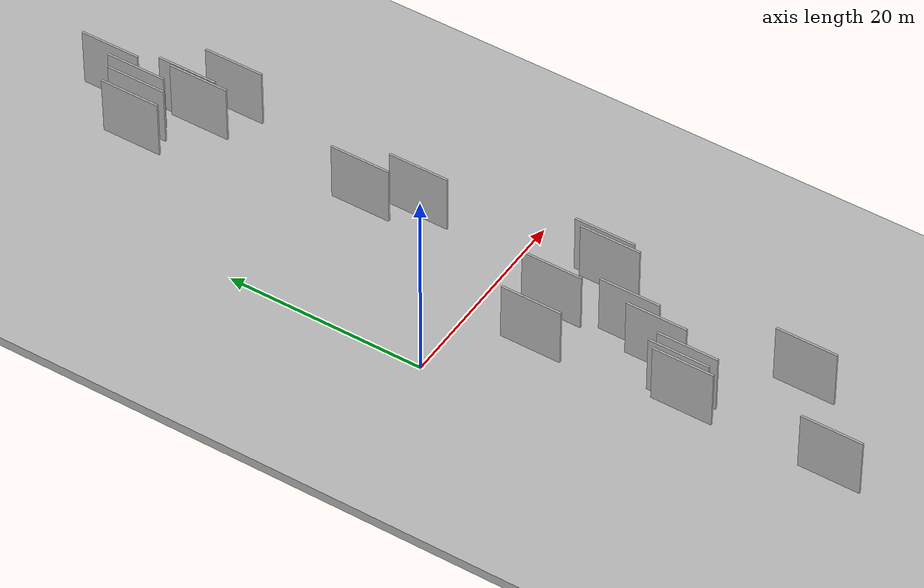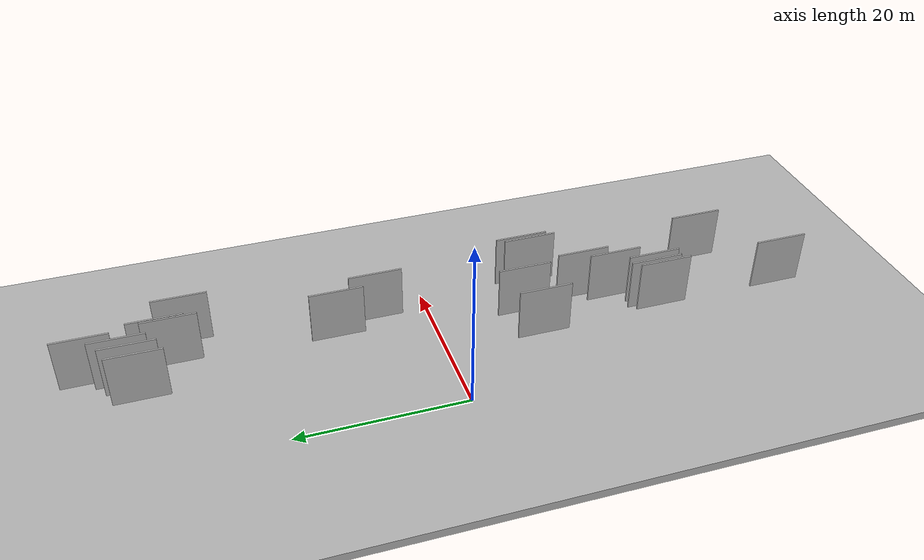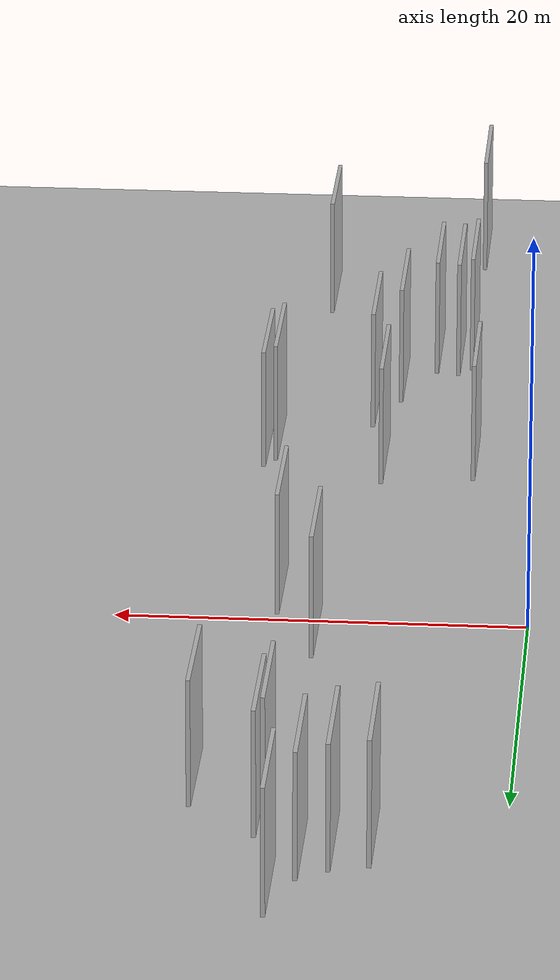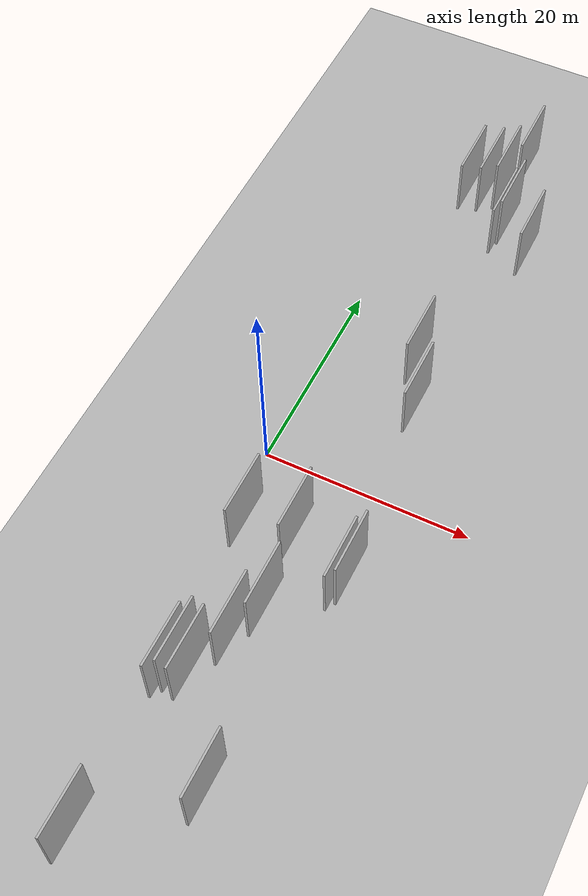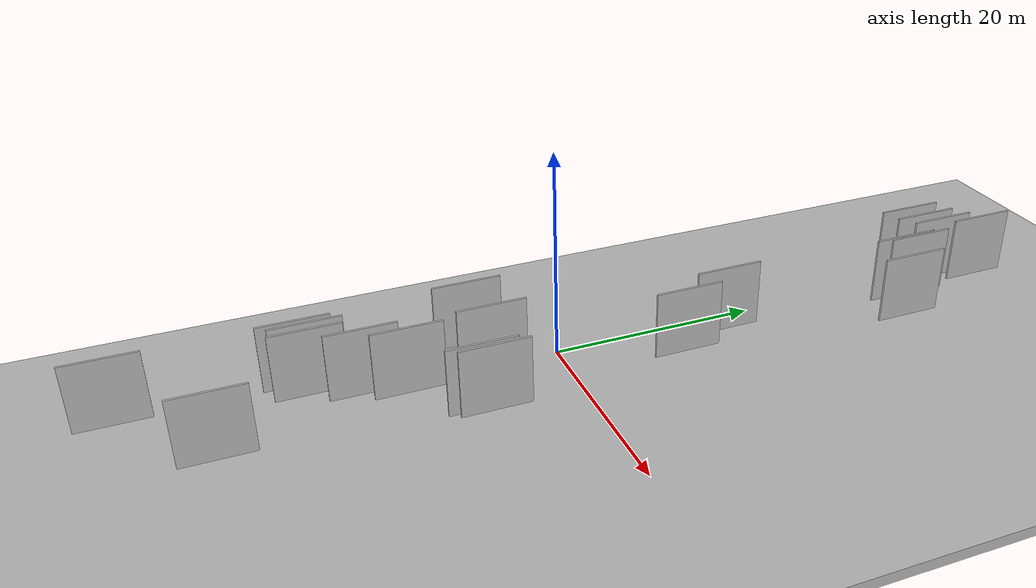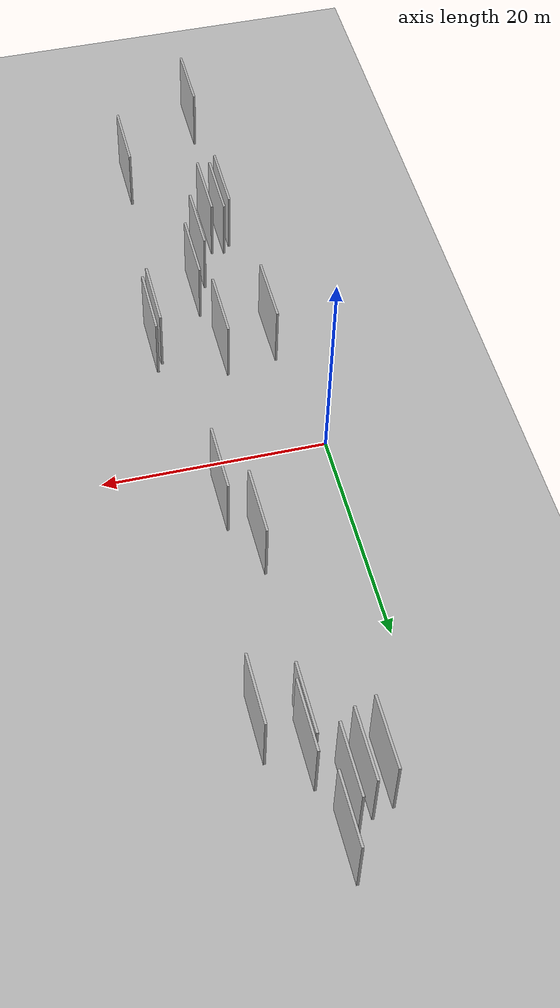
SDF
<?xml version="1.0" encoding="utf-8"?>

<sdf version="1.6">

   <world name="default">

      <gui fullscreen="0">

         <camera name="user_camera">

            <pose>-15 0 4.57585 0 0 0</pose>

            <view_controller>orbit</view_controller>

         </camera>

      </gui>

      <scene>

         <sky>

           <clouds>

             <speed>12</speed>

           </clouds>

         </sky>

         <ambient>0.4 0.4 0.4 1</ambient>

         <background>0.7 0.7 0.7 1</background>

         <shadows>1</shadows>

      </scene>

      <gravity>0 0 -9.8066</gravity>

      <magnetic_field>6e-06 2.3e-05 -4.2e-05</magnetic_field>

      <physics default="0" name="default_physics" type="ode">

         <ode>

            <solver>

               <type>quick</type>

               <iters>10</iters>

               <sor>1.0</sor>

               <use_dynamic_moi_rescaling>0</use_dynamic_moi_rescaling>

            </solver>

            <constraints>

               <cfm>0</cfm>

               <erp>0.2</erp>

               <contact_max_correcting_vel>100</contact_max_correcting_vel>

               <contact_surface_layer>0.001</contact_surface_layer>

            </constraints>

         </ode>

         <max_step_size>0.004</max_step_size>

         <real_time_factor>1</real_time_factor>

         <real_time_update_rate>250</real_time_update_rate>

      </physics>

      <light name="sun" type="directional">

         <cast_shadows>1</cast_shadows>

         <pose>0 0 10 0 0 0</pose>

         <diffuse>0.8 0.8 0.8 1</diffuse>

         <specular>0.2 0.2 0.2 1</specular>

         <attenuation>

            <range>1000</range>

            <constant>0.9</constant>

            <linear>0.01</linear>

            <quadratic>0.001</quadratic>

         </attenuation>

         <direction>-0.5 0.1 -0.9</direction>

      </light>

      <include>

         <name>ground_plane_1</name>

         <uri>model://HANNAS_ground_plane</uri>

         <pose>0 0 0  0 0 0</pose>

      </include>

      <include>

         <name>ground_plane_2</name>

         <uri>model://HANNAS_ground_plane</uri>

         <pose>100 0 0  0 0 0</pose>

      </include>

      <model name="HANNAS_wall_1">

         <static>1</static>

         <pose frame="">13.3435 -10.2346 5.0 0.000000 0.000000 1.570796</pose>

         <link name="link">

            <pose frame="">0 0 3.00 0 0 0</pose>

            <collision name="collision">

               <geometry>

                  <box>

                     <size>6.00 0.2 6.00</size>

                  </box>

               </geometry>

               <max_contacts>10</max_contacts>

               <surface>

                  <contact>

                     <ode/>

                  </contact>

                  <bounce/>

                  <friction>

                     <torsional>

                        <ode/>

                     </torsional>

                     <ode/>

                  </friction>

               </surface>

            </collision>

            <visual name="visual">

               <cast_shadows>0</cast_shadows>

               <geometry>

                  <box>

                     <size>6.00 0.2 6.00</size>

                  </box>

               </geometry>

               <material>

                  <script>

                     <uri>model://HANNAS_wall/materials/scripts</uri>

                     <uri>model://HANNAS_wall/materials/textures</uri>

                     <name>vrc/HANNAS_wall</name>

                  </script>

               </material>

            </visual>

            <self_collide>0</self_collide>

            <enable_wind>0</enable_wind>

            <kinematic>0</kinematic>

         </link>

      </model>

      <model name="HANNAS_wall_2">

         <static>1</static>

         <pose frame="">8.3272 -15.8261 5.0 0.000000 0.000000 1.570796</pose>

         <link name="link">

            <pose frame="">0 0 3.00 0 0 0</pose>

            <collision name="collision">

               <geometry>

                  <box>

                     <size>6.00 0.2 6.00</size>

                  </box>

               </geometry>

               <max_contacts>10</max_contacts>

               <surface>

                  <contact>

                     <ode/>

                  </contact>

                  <bounce/>

                  <friction>

                     <torsional>

                        <ode/>

                     </torsional>

                     <ode/>

                  </friction>

               </surface>

            </collision>

            <visual name="visual">

               <cast_shadows>0</cast_shadows>

               <geometry>

                  <box>

                     <size>6.00 0.2 6.00</size>

                  </box>

               </geometry>

               <material>

                  <script>

                     <uri>model://HANNAS_wall/materials/scripts</uri>

                     <uri>model://HANNAS_wall/materials/textures</uri>

                     <name>vrc/HANNAS_wall</name>

                  </script>

               </material>

            </visual>

            <self_collide>0</self_collide>

            <enable_wind>0</enable_wind>

            <kinematic>0</kinematic>

         </link>

      </model>

      <model name="HANNAS_wall_3">

         <static>1</static>

         <pose frame="">7.1234 -19.2149 5.0 0.000000 0.000000 1.570796</pose>

         <link name="link">

            <pose frame="">0 0 3.00 0 0 0</pose>

            <collision name="collision">

               <geometry>

                  <box>

                     <size>6.00 0.2 6.00</size>

                  </box>

               </geometry>

               <max_contacts>10</max_contacts>

               <surface>

                  <contact>

                     <ode/>

                  </contact>

                  <bounce/>

                  <friction>

                     <torsional>

                        <ode/>

                     </torsional>

                     <ode/>

                  </friction>

               </surface>

            </collision>

            <visual name="visual">

               <cast_shadows>0</cast_shadows>

               <geometry>

                  <box>

                     <size>6.00 0.2 6.00</size>

                  </box>

               </geometry>

               <material>

                  <script>

                     <uri>model://HANNAS_wall/materials/scripts</uri>

                     <uri>model://HANNAS_wall/materials/textures</uri>

                     <name>vrc/HANNAS_wall</name>

                  </script>

               </material>

            </visual>

            <self_collide>0</self_collide>

            <enable_wind>0</enable_wind>

            <kinematic>0</kinematic>

         </link>

      </model>

      <model name="HANNAS_wall_4">

         <static>1</static>

         <pose frame="">9.4887 39.0282 5.0 0.000000 0.000000 1.570796</pose>

         <link name="link">

            <pose frame="">0 0 3.00 0 0 0</pose>

            <collision name="collision">

               <geometry>

                  <box>

                     <size>6.00 0.2 6.00</size>

                  </box>

               </geometry>

               <max_contacts>10</max_contacts>

               <surface>

                  <contact>

                     <ode/>

                  </contact>

                  <bounce/>

                  <friction>

                     <torsional>

                        <ode/>

                     </torsional>

                     <ode/>

                  </friction>

               </surface>

            </collision>

            <visual name="visual">

               <cast_shadows>0</cast_shadows>

               <geometry>

                  <box>

                     <size>6.00 0.2 6.00</size>

                  </box>

               </geometry>

               <material>

                  <script>

                     <uri>model://HANNAS_wall/materials/scripts</uri>

                     <uri>model://HANNAS_wall/materials/textures</uri>

                     <name>vrc/HANNAS_wall</name>

                  </script>

               </material>

            </visual>

            <self_collide>0</self_collide>

            <enable_wind>0</enable_wind>

            <kinematic>0</kinematic>

         </link>

      </model>

      <model name="HANNAS_wall_5">

         <static>1</static>

         <pose frame="">8.3911 35.4587 5.0 0.000000 0.000000 1.570796</pose>

         <link name="link">

            <pose frame="">0 0 3.00 0 0 0</pose>

            <collision name="collision">

               <geometry>

                  <box>

                     <size>6.00 0.2 6.00</size>

                  </box>

               </geometry>

               <max_contacts>10</max_contacts>

               <surface>

                  <contact>

                     <ode/>

                  </contact>

                  <bounce/>

                  <friction>

                     <torsional>

                        <ode/>

                     </torsional>

                     <ode/>

                  </friction>

               </surface>

            </collision>

            <visual name="visual">

               <cast_shadows>0</cast_shadows>

               <geometry>

                  <box>

                     <size>6.00 0.2 6.00</size>

                  </box>

               </geometry>

               <material>

                  <script>

                     <uri>model://HANNAS_wall/materials/scripts</uri>

                     <uri>model://HANNAS_wall/materials/textures</uri>

                     <name>vrc/HANNAS_wall</name>

                  </script>

               </material>

            </visual>

            <self_collide>0</self_collide>

            <enable_wind>0</enable_wind>

            <kinematic>0</kinematic>

         </link>

      </model>

      <model name="HANNAS_wall_6">

         <static>1</static>

         <pose frame="">5.3380 34.0003 5.0 0.000000 0.000000 1.570796</pose>

         <link name="link">

            <pose frame="">0 0 3.00 0 0 0</pose>

            <collision name="collision">

               <geometry>

                  <box>

                     <size>6.00 0.2 6.00</size>

                  </box>

               </geometry>

               <max_contacts>10</max_contacts>

               <surface>

                  <contact>

                     <ode/>

                  </contact>

                  <bounce/>

                  <friction>

                     <torsional>

                        <ode/>

                     </torsional>

                     <ode/>

                  </friction>

               </surface>

            </collision>

            <visual name="visual">

               <cast_shadows>0</cast_shadows>

               <geometry>

                  <box>

                     <size>6.00 0.2 6.00</size>

                  </box>

               </geometry>

               <material>

                  <script>

                     <uri>model://HANNAS_wall/materials/scripts</uri>

                     <uri>model://HANNAS_wall/materials/textures</uri>

                     <name>vrc/HANNAS_wall</name>

                  </script>

               </material>

            </visual>

            <self_collide>0</self_collide>

            <enable_wind>0</enable_wind>

            <kinematic>0</kinematic>

         </link>

      </model>

      <model name="HANNAS_wall_7">

         <static>1</static>

         <pose frame="">13.5607 28.5280 5.0 0.000000 0.000000 1.570796</pose>

         <link name="link">

            <pose frame="">0 0 3.00 0 0 0</pose>

            <collision name="collision">

               <geometry>

                  <box>

                     <size>6.00 0.2 6.00</size>

                  </box>

               </geometry>

               <max_contacts>10</max_contacts>

               <surface>

                  <contact>

                     <ode/>

                  </contact>

                  <bounce/>

                  <friction>

                     <torsional>

                        <ode/>

                     </torsional>

                     <ode/>

                  </friction>

               </surface>

            </collision>

            <visual name="visual">

               <cast_shadows>0</cast_shadows>

               <geometry>

                  <box>

                     <size>6.00 0.2 6.00</size>

                  </box>

               </geometry>

               <material>

                  <script>

                     <uri>model://HANNAS_wall/materials/scripts</uri>

                     <uri>model://HANNAS_wall/materials/textures</uri>

                     <name>vrc/HANNAS_wall</name>

                  </script>

               </material>

            </visual>

            <self_collide>0</self_collide>

            <enable_wind>0</enable_wind>

            <kinematic>0</kinematic>

         </link>

      </model>

      <model name="HANNAS_wall_8">

         <static>1</static>

         <pose frame="">11.4334 -31.4107 5.0 0.000000 0.000000 1.570796</pose>

         <link name="link">

            <pose frame="">0 0 3.00 0 0 0</pose>

            <collision name="collision">

               <geometry>

                  <box>

                     <size>6.00 0.2 6.00</size>

                  </box>

               </geometry>

               <max_contacts>10</max_contacts>

               <surface>

                  <contact>

                     <ode/>

                  </contact>

                  <bounce/>

                  <friction>

                     <torsional>

                        <ode/>

                     </torsional>

                     <ode/>

                  </friction>

               </surface>

            </collision>

            <visual name="visual">

               <cast_shadows>0</cast_shadows>

               <geometry>

                  <box>

                     <size>6.00 0.2 6.00</size>

                  </box>

               </geometry>

               <material>

                  <script>

                     <uri>model://HANNAS_wall/materials/scripts</uri>

                     <uri>model://HANNAS_wall/materials/textures</uri>

                     <name>vrc/HANNAS_wall</name>

                  </script>

               </material>

            </visual>

            <self_collide>0</self_collide>

            <enable_wind>0</enable_wind>

            <kinematic>0</kinematic>

         </link>

      </model>

      <model name="HANNAS_wall_9">

         <static>1</static>

         <pose frame="">9.3766 12.3672 5.0 0.000000 0.000000 1.570796</pose>

         <link name="link">

            <pose frame="">0 0 3.00 0 0 0</pose>

            <collision name="collision">

               <geometry>

                  <box>

                     <size>6.00 0.2 6.00</size>

                  </box>

               </geometry>

               <max_contacts>10</max_contacts>

               <surface>

                  <contact>

                     <ode/>

                  </contact>

                  <bounce/>

                  <friction>

                     <torsional>

                        <ode/>

                     </torsional>

                     <ode/>

                  </friction>

               </surface>

            </collision>

            <visual name="visual">

               <cast_shadows>0</cast_shadows>

               <geometry>

                  <box>

                     <size>6.00 0.2 6.00</size>

                  </box>

               </geometry>

               <material>

                  <script>

                     <uri>model://HANNAS_wall/materials/scripts</uri>

                     <uri>model://HANNAS_wall/materials/textures</uri>

                     <name>vrc/HANNAS_wall</name>

                  </script>

               </material>

            </visual>

            <self_collide>0</self_collide>

            <enable_wind>0</enable_wind>

            <kinematic>0</kinematic>

         </link>

      </model>

      <model name="HANNAS_wall_10">

         <static>1</static>

         <pose frame="">3.8055 -38.2990 5.0 0.000000 0.000000 1.570796</pose>

         <link name="link">

            <pose frame="">0 0 3.00 0 0 0</pose>

            <collision name="collision">

               <geometry>

                  <box>

                     <size>6.00 0.2 6.00</size>

                  </box>

               </geometry>

               <max_contacts>10</max_contacts>

               <surface>

                  <contact>

                     <ode/>

                  </contact>

                  <bounce/>

                  <friction>

                     <torsional>

                        <ode/>

                     </torsional>

                     <ode/>

                  </friction>

               </surface>

            </collision>

            <visual name="visual">

               <cast_shadows>0</cast_shadows>

               <geometry>

                  <box>

                     <size>6.00 0.2 6.00</size>

                  </box>

               </geometry>

               <material>

                  <script>

                     <uri>model://HANNAS_wall/materials/scripts</uri>

                     <uri>model://HANNAS_wall/materials/textures</uri>

                     <name>vrc/HANNAS_wall</name>

                  </script>

               </material>

            </visual>

            <self_collide>0</self_collide>

            <enable_wind>0</enable_wind>

            <kinematic>0</kinematic>

         </link>

      </model>

      <model name="HANNAS_wall_11">

         <static>1</static>

         <pose frame="">7.0572 34.5183 5.0 0.000000 0.000000 1.570796</pose>

         <link name="link">

            <pose frame="">0 0 3.00 0 0 0</pose>

            <collision name="collision">

               <geometry>

                  <box>

                     <size>6.00 0.2 6.00</size>

                  </box>

               </geometry>

               <max_contacts>10</max_contacts>

               <surface>

                  <contact>

                     <ode/>

                  </contact>

                  <bounce/>

                  <friction>

                     <torsional>

                        <ode/>

                     </torsional>

                     <ode/>

                  </friction>

               </surface>

            </collision>

            <visual name="visual">

               <cast_shadows>0</cast_shadows>

               <geometry>

                  <box>

                     <size>6.00 0.2 6.00</size>

                  </box>

               </geometry>

               <material>

                  <script>

                     <uri>model://HANNAS_wall/materials/scripts</uri>

                     <uri>model://HANNAS_wall/materials/textures</uri>

                     <name>vrc/HANNAS_wall</name>

                  </script>

               </material>

            </visual>

            <self_collide>0</self_collide>

            <enable_wind>0</enable_wind>

            <kinematic>0</kinematic>

         </link>

      </model>

      <model name="HANNAS_wall_12">

         <static>1</static>

         <pose frame="">10.1963 30.0239 5.0 0.000000 0.000000 1.570796</pose>

         <link name="link">

            <pose frame="">0 0 3.00 0 0 0</pose>

            <collision name="collision">

               <geometry>

                  <box>

                     <size>6.00 0.2 6.00</size>

                  </box>

               </geometry>

               <max_contacts>10</max_contacts>

               <surface>

                  <contact>

                     <ode/>

                  </contact>

                  <bounce/>

                  <friction>

                     <torsional>

                        <ode/>

                     </torsional>

                     <ode/>

                  </friction>

               </surface>

            </collision>

            <visual name="visual">

               <cast_shadows>0</cast_shadows>

               <geometry>

                  <box>

                     <size>6.00 0.2 6.00</size>

                  </box>

               </geometry>

               <material>

                  <script>

                     <uri>model://HANNAS_wall/materials/scripts</uri>

                     <uri>model://HANNAS_wall/materials/textures</uri>

                     <name>vrc/HANNAS_wall</name>

                  </script>

               </material>

            </visual>

            <self_collide>0</self_collide>

            <enable_wind>0</enable_wind>

            <kinematic>0</kinematic>

         </link>

      </model>

      <model name="HANNAS_wall_13">

         <static>1</static>

         <pose frame="">10.4868 31.4082 5.0 0.000000 0.000000 1.570796</pose>

         <link name="link">

            <pose frame="">0 0 3.00 0 0 0</pose>

            <collision name="collision">

               <geometry>

                  <box>

                     <size>6.00 0.2 6.00</size>

                  </box>

               </geometry>

               <max_contacts>10</max_contacts>

               <surface>

                  <contact>

                     <ode/>

                  </contact>

                  <bounce/>

                  <friction>

                     <torsional>

                        <ode/>

                     </torsional>

                     <ode/>

                  </friction>

               </surface>

            </collision>

            <visual name="visual">

               <cast_shadows>0</cast_shadows>

               <geometry>

                  <box>

                     <size>6.00 0.2 6.00</size>

                  </box>

               </geometry>

               <material>

                  <script>

                     <uri>model://HANNAS_wall/materials/scripts</uri>

                     <uri>model://HANNAS_wall/materials/textures</uri>

                     <name>vrc/HANNAS_wall</name>

                  </script>

               </material>

            </visual>

            <self_collide>0</self_collide>

            <enable_wind>0</enable_wind>

            <kinematic>0</kinematic>

         </link>

      </model>

      <model name="HANNAS_wall_14">

         <static>1</static>

         <pose frame="">4.4387 -23.0363 5.0 0.000000 0.000000 1.570796</pose>

         <link name="link">

            <pose frame="">0 0 3.00 0 0 0</pose>

            <collision name="collision">

               <geometry>

                  <box>

                     <size>6.00 0.2 6.00</size>

                  </box>

               </geometry>

               <max_contacts>10</max_contacts>

               <surface>

                  <contact>

                     <ode/>

                  </contact>

                  <bounce/>

                  <friction>

                     <torsional>

                        <ode/>

                     </torsional>

                     <ode/>

                  </friction>

               </surface>

            </collision>

            <visual name="visual">

               <cast_shadows>0</cast_shadows>

               <geometry>

                  <box>

                     <size>6.00 0.2 6.00</size>

                  </box>

               </geometry>

               <material>

                  <script>

                     <uri>model://HANNAS_wall/materials/scripts</uri>

                     <uri>model://HANNAS_wall/materials/textures</uri>

                     <name>vrc/HANNAS_wall</name>

                  </script>

               </material>

            </visual>

            <self_collide>0</self_collide>

            <enable_wind>0</enable_wind>

            <kinematic>0</kinematic>

         </link>

      </model>

      <model name="HANNAS_wall_15">

         <static>1</static>

         <pose frame="">12.8225 -11.0919 5.0 0.000000 0.000000 1.570796</pose>

         <link name="link">

            <pose frame="">0 0 3.00 0 0 0</pose>

            <collision name="collision">

               <geometry>

                  <box>

                     <size>6.00 0.2 6.00</size>

                  </box>

               </geometry>

               <max_contacts>10</max_contacts>

               <surface>

                  <contact>

                     <ode/>

                  </contact>

                  <bounce/>

                  <friction>

                     <torsional>

                        <ode/>

                     </torsional>

                     <ode/>

                  </friction>

               </surface>

            </collision>

            <visual name="visual">

               <cast_shadows>0</cast_shadows>

               <geometry>

                  <box>

                     <size>6.00 0.2 6.00</size>

                  </box>

               </geometry>

               <material>

                  <script>

                     <uri>model://HANNAS_wall/materials/scripts</uri>

                     <uri>model://HANNAS_wall/materials/textures</uri>

                     <name>vrc/HANNAS_wall</name>

                  </script>

               </material>

            </visual>

            <self_collide>0</self_collide>

            <enable_wind>0</enable_wind>

            <kinematic>0</kinematic>

         </link>

      </model>

      <model name="HANNAS_wall_16">

         <static>1</static>

         <pose frame="">3.0195 -9.2553 5.0 0.000000 0.000000 1.570796</pose>

         <link name="link">

            <pose frame="">0 0 3.00 0 0 0</pose>

            <collision name="collision">

               <geometry>

                  <box>

                     <size>6.00 0.2 6.00</size>

                  </box>

               </geometry>

               <max_contacts>10</max_contacts>

               <surface>

                  <contact>

                     <ode/>

                  </contact>

                  <bounce/>

                  <friction>

                     <torsional>

                        <ode/>

                     </torsional>

                     <ode/>

                  </friction>

               </surface>

            </collision>

            <visual name="visual">

               <cast_shadows>0</cast_shadows>

               <geometry>

                  <box>

                     <size>6.00 0.2 6.00</size>

                  </box>

               </geometry>

               <material>

                  <script>

                     <uri>model://HANNAS_wall/materials/scripts</uri>

                     <uri>model://HANNAS_wall/materials/textures</uri>

                     <name>vrc/HANNAS_wall</name>

                  </script>

               </material>

            </visual>

            <self_collide>0</self_collide>

            <enable_wind>0</enable_wind>

            <kinematic>0</kinematic>

         </link>

      </model>

      <model name="HANNAS_wall_17">

         <static>1</static>

         <pose frame="">7.4820 -8.5324 5.0 0.000000 0.000000 1.570796</pose>

         <link name="link">

            <pose frame="">0 0 3.00 0 0 0</pose>

            <collision name="collision">

               <geometry>

                  <box>

                     <size>6.00 0.2 6.00</size>

                  </box>

               </geometry>

               <max_contacts>10</max_contacts>

               <surface>

                  <contact>

                     <ode/>

                  </contact>

                  <bounce/>

                  <friction>

                     <torsional>

                        <ode/>

                     </torsional>

                     <ode/>

                  </friction>

               </surface>

            </collision>

            <visual name="visual">

               <cast_shadows>0</cast_shadows>

               <geometry>

                  <box>

                     <size>6.00 0.2 6.00</size>

                  </box>

               </geometry>

               <material>

                  <script>

                     <uri>model://HANNAS_wall/materials/scripts</uri>

                     <uri>model://HANNAS_wall/materials/textures</uri>

                     <name>vrc/HANNAS_wall</name>

                  </script>

               </material>

            </visual>

            <self_collide>0</self_collide>

            <enable_wind>0</enable_wind>

            <kinematic>0</kinematic>

         </link>

      </model>

      <model name="HANNAS_wall_18">

         <static>1</static>

         <pose frame="">5.5375 -23.2499 5.0 0.000000 0.000000 1.570796</pose>

         <link name="link">

            <pose frame="">0 0 3.00 0 0 0</pose>

            <collision name="collision">

               <geometry>

                  <box>

                     <size>6.00 0.2 6.00</size>

                  </box>

               </geometry>

               <max_contacts>10</max_contacts>

               <surface>

                  <contact>

                     <ode/>

                  </contact>

                  <bounce/>

                  <friction>

                     <torsional>

                        <ode/>

                     </torsional>

                     <ode/>

                  </friction>

               </surface>

            </collision>

            <visual name="visual">

               <cast_shadows>0</cast_shadows>

               <geometry>

                  <box>

                     <size>6.00 0.2 6.00</size>

                  </box>

               </geometry>

               <material>

                  <script>

                     <uri>model://HANNAS_wall/materials/scripts</uri>

                     <uri>model://HANNAS_wall/materials/textures</uri>

                     <name>vrc/HANNAS_wall</name>

                  </script>

               </material>

            </visual>

            <self_collide>0</self_collide>

            <enable_wind>0</enable_wind>

            <kinematic>0</kinematic>

         </link>

      </model>

      <model name="HANNAS_wall_19">

         <static>1</static>

         <pose frame="">11.3121 7.5573 5.0 0.000000 0.000000 1.570796</pose>

         <link name="link">

            <pose frame="">0 0 3.00 0 0 0</pose>

            <collision name="collision">

               <geometry>

                  <box>

                     <size>6.00 0.2 6.00</size>

                  </box>

               </geometry>

               <max_contacts>10</max_contacts>

               <surface>

                  <contact>

                     <ode/>

                  </contact>

                  <bounce/>

                  <friction>

                     <torsional>

                        <ode/>

                     </torsional>

                     <ode/>

                  </friction>

               </surface>

            </collision>

            <visual name="visual">

               <cast_shadows>0</cast_shadows>

               <geometry>

                  <box>

                     <size>6.00 0.2 6.00</size>

                  </box>

               </geometry>

               <material>

                  <script>

                     <uri>model://HANNAS_wall/materials/scripts</uri>

                     <uri>model://HANNAS_wall/materials/textures</uri>

                     <name>vrc/HANNAS_wall</name>

                  </script>

               </material>

            </visual>

            <self_collide>0</self_collide>

            <enable_wind>0</enable_wind>

            <kinematic>0</kinematic>

         </link>

      </model>

      <model name="HANNAS_wall_20">

         <static>1</static>

         <pose frame="">3.7870 -23.8621 5.0 0.000000 0.000000 1.570796</pose>

         <link name="link">

            <pose frame="">0 0 3.00 0 0 0</pose>

            <collision name="collision">

               <geometry>

                  <box>

                     <size>6.00 0.2 6.00</size>

                  </box>

               </geometry>

               <max_contacts>10</max_contacts>

               <surface>

                  <contact>

                     <ode/>

                  </contact>

                  <bounce/>

                  <friction>

                     <torsional>

                        <ode/>

                     </torsional>

                     <ode/>

                  </friction>

               </surface>

            </collision>

            <visual name="visual">

               <cast_shadows>0</cast_shadows>

               <geometry>

                  <box>

                     <size>6.00 0.2 6.00</size>

                  </box>

               </geometry>

               <material>

                  <script>

                     <uri>model://HANNAS_wall/materials/scripts</uri>

                     <uri>model://HANNAS_wall/materials/textures</uri>

                     <name>vrc/HANNAS_wall</name>

                  </script>

               </material>

            </visual>

            <self_collide>0</self_collide>

            <enable_wind>0</enable_wind>

            <kinematic>0</kinematic>

         </link>

      </model>

   </world>

</sdf>

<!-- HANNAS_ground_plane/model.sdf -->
<sdf version="1.4">
<model name="HANNAS_ground_plane">
  <static>true</static>
    <link name="link">
      <collision name="collision">
        <geometry>
          <plane>
            <normal>0 0 1</normal>
            <size>1000 1000</size>
          </plane>
        </geometry>
        <surface>
          <friction>
            <ode>
              <mu>100</mu>
              <mu2>50</mu2>
            </ode>
          </friction>
        </surface>
      </collision>
      <visual name="visual">
        <cast_shadows>false</cast_shadows>
        <geometry>
          <plane>
            <normal>0 0 1</normal>
            <size>1000 1000</size>
          </plane>
        </geometry>
        <material>
          <script>
            <uri>model://HANNAS_ground_plane/materials/scripts/HANNAS_ground_plane.material</uri>
	    <uri>model://HANNAS_ground_plane/materials/textures</uri>
            <name>HANNASGroundPlane/Image</name>
          </script>
        </material>
      </visual>
    </link>
  </model>
</sdf>
